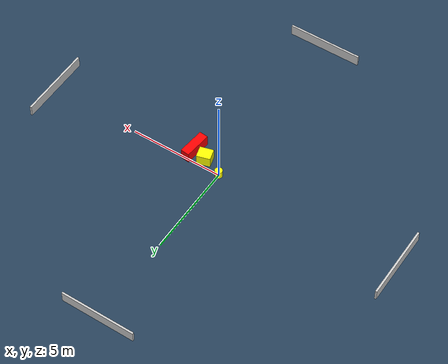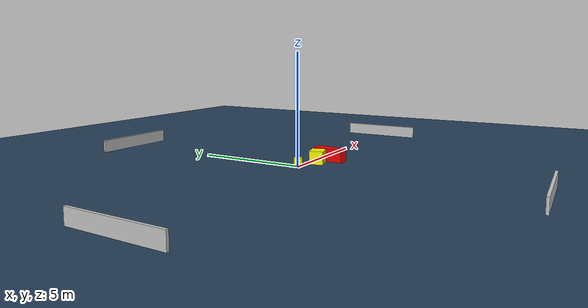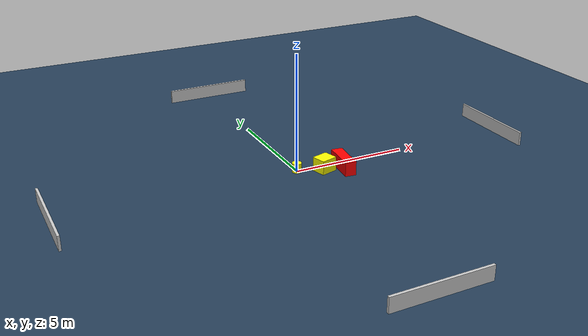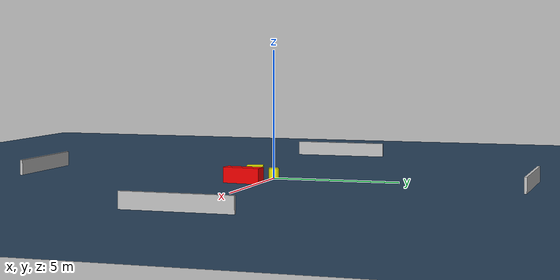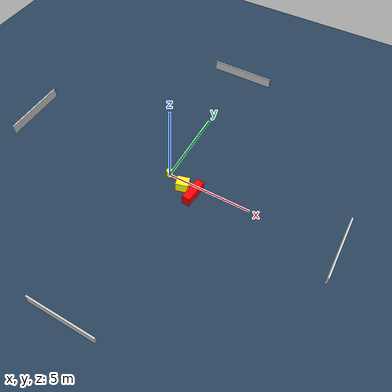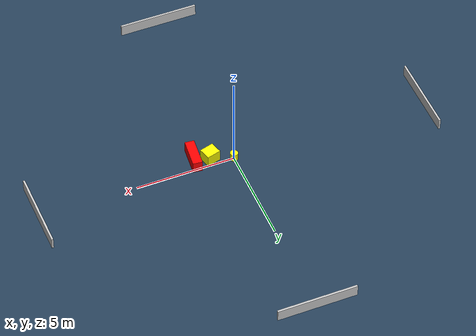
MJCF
<?xml version="1.0" ?>
<mujoco model="generated_environment">
  <option timestep="0.01" integrator="RK4" cone="elliptic"/>
  <default>
    <geom density="1"/>
  </default>
  <asset>
    <texture builtin="gradient" height="3072" name="skybox" rgb1="0.3 0.5 0.7" rgb2="0 0 0" type="skybox" width="512"/>
    <texture builtin="checker" height="300" name="groundplane" rgb1="0.2 0.3 0.4" rgb2="0.1 0.2 0.3" type="2d" width="300"/>
    <material name="groundplane" reflectance="0.2" texrepeat="5 5" texture="groundplane"/>
  </asset>
  <worldbody>
    <light dir="0 0 -1" directional="true" pos="0 0 1.5"/>
    <geom condim="3" friction="0.5 0.005 0.001" material="groundplane" name="floor" pos="0 0 0" size="0 0 0.05" type="plane"/>
    <body name="walls">
      <geom name="wall_1" condim="4" pos="-10.0 0.0 0.3" rgba="0.800000011920929 0.800000011920929 0.800000011920929 1.0" size="0.05 2.0 0.3" type="box"/>
      <geom name="wall_2" condim="4" pos="10.0 0.0 0.3" rgba="0.800000011920929 0.800000011920929 0.800000011920929 1.0" size="0.05 2.0 0.3" type="box"/>
      <geom name="wall_3" condim="4" pos="0.0 -10.0 0.3" rgba="0.800000011920929 0.800000011920929 0.800000011920929 1.0" size="2.0 0.05 0.3" type="box"/>
      <geom name="wall_4" condim="4" pos="0.0 10.0 0.3" rgba="0.800000011920929 0.800000011920929 0.800000011920929 1.0" size="2.0 0.05 0.3" type="box"/>
    </body>
    <body name="robot">
      <joint name="joint_x" type="slide" pos="0 0 0" axis="1 0 0"/>
      <joint name="joint_y" type="slide" pos="0 0 0" axis="0 1 0"/>
      <geom name="robot" type="cylinder" pos="0.0 0.0 0.2" size="0.2 0.2 0.0" mass="5.0" friction="1.0 0.005 0.0001" condim="4" rgba="1.0 1.0 0.0 1.0"/>
    </body>
    <body name="obstacle_1_movable">
      <geom name="obstacle_1_movable" condim="4" pos="1.0736743532998911 -0.40004837262645027 0.3" euler="0 0 195.52054818863837" friction="0.0 0.005 0.001" rgba="1.0 1.0 0.0 1.0" size="0.3618342405062977 0.3109810779649438 0.3" type="box" mass="0.1"/>
      <joint type="free"/>
    </body>
    <body name="obstacle_2_static">
      <geom name="obstacle_2_static" condim="4" pos="1.8508087541160827 -0.6153400827648801 0.3" euler="0 0 354.0454274143829" friction="0.0 0.005 0.001" rgba="1.0 0.0 0.0 1.0" size="0.2381183441714116 0.734691644682167 0.3" type="box"/>
    </body>
  </worldbody>
  <actuator>
    <motor name="actuator_x" joint="joint_x" gear="1" ctrlrange="-1 1"/>
    <motor name="actuator_y" joint="joint_y" gear="1" ctrlrange="-1 1"/>
  </actuator>
</mujoco>
